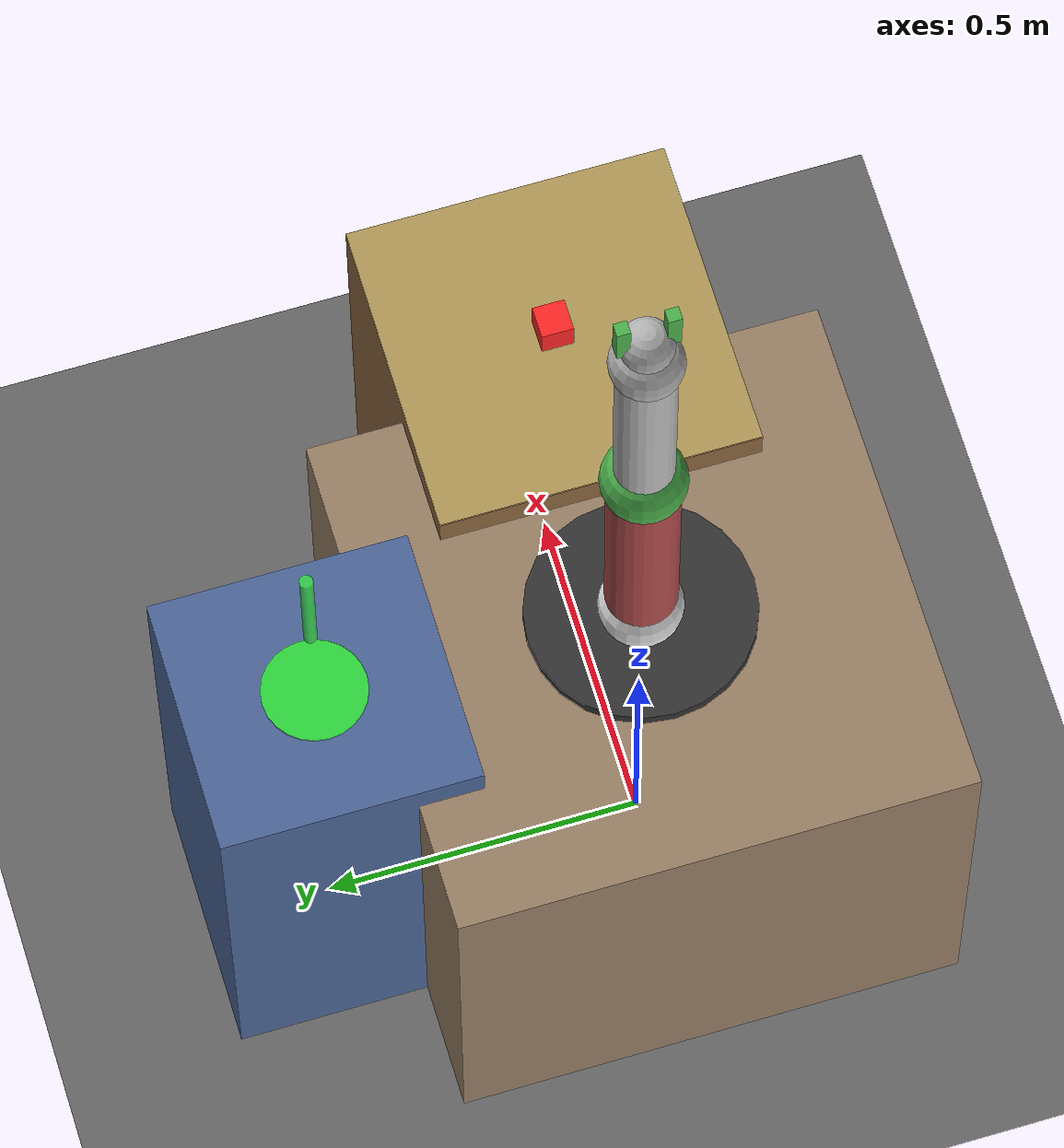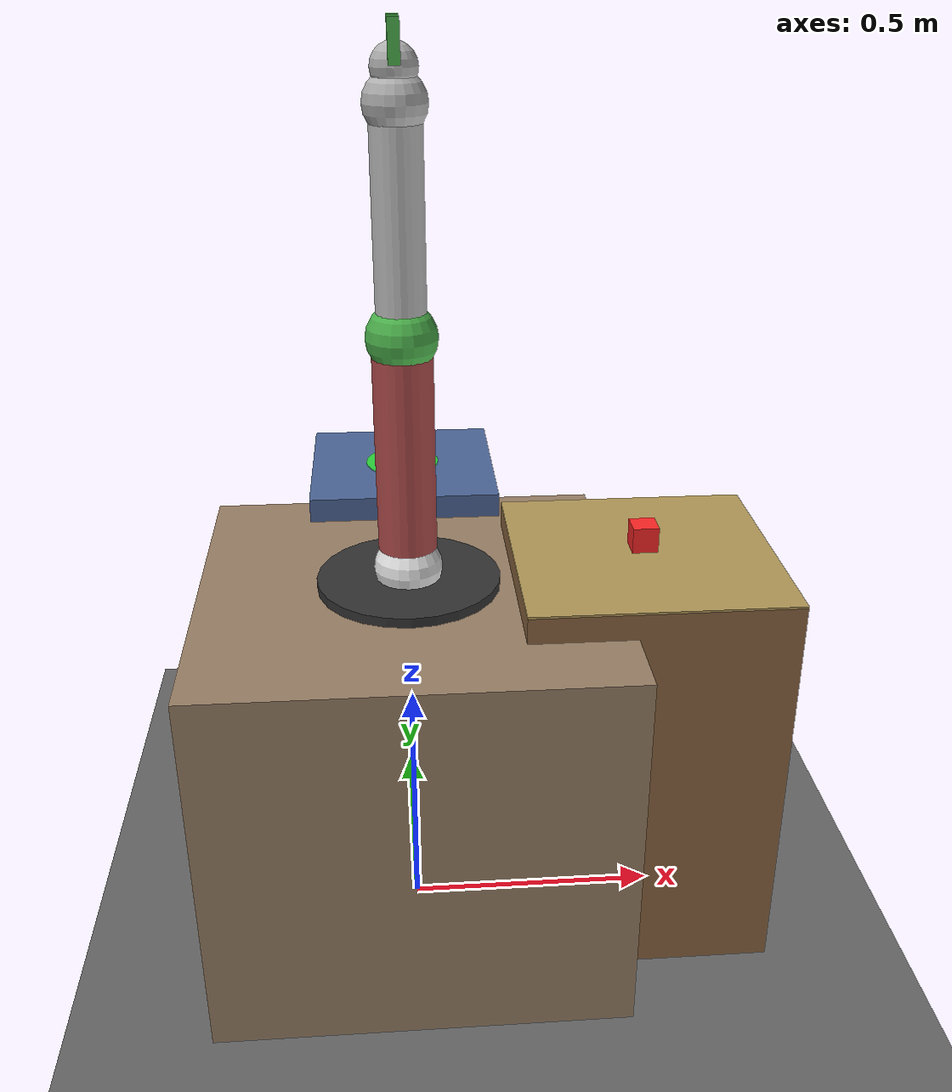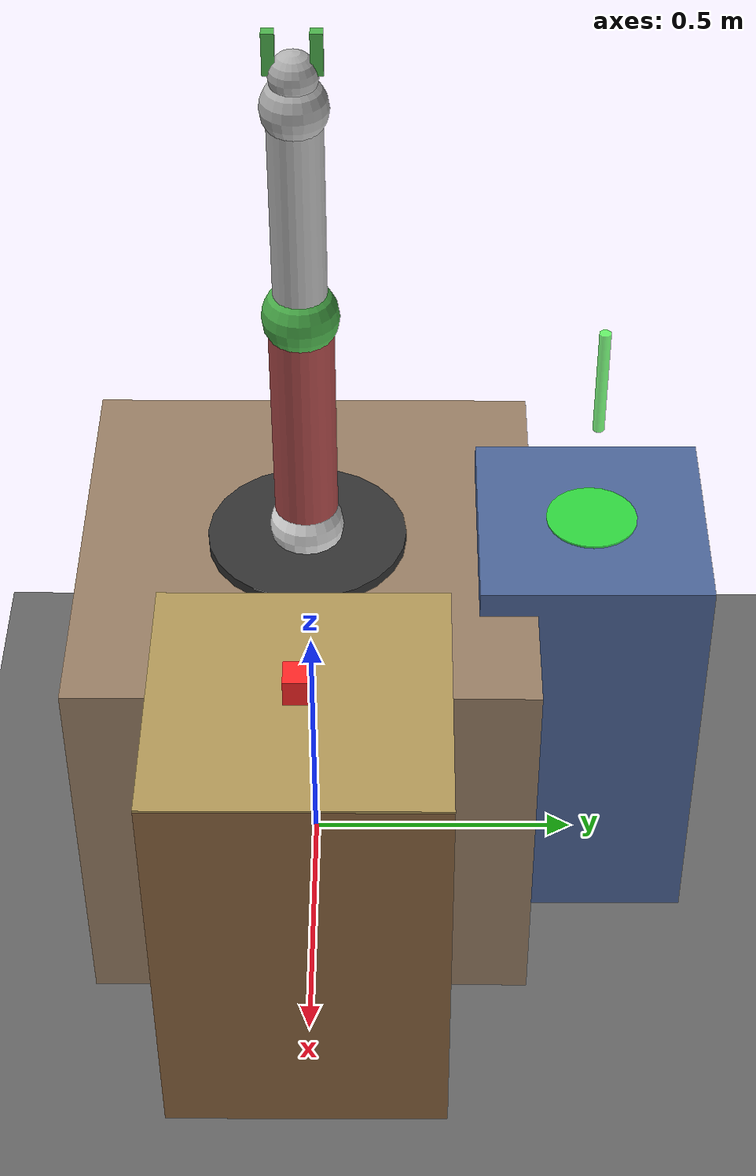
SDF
<?xml version="1.0"?>
<sdf version="1.8">
  <world name="pick_place_world">

    <!-- ============================================================
         PHYSICS
    ============================================================ -->
    <physics name="1ms" type="ode">
      <max_step_size>0.001</max_step_size>
      <real_time_factor>1.0</real_time_factor>
      <real_time_update_rate>1000</real_time_update_rate>
    </physics>

    <!-- ============================================================
         PLUGINS
    ============================================================ -->
    <plugin filename="gz-sim-physics-system"
            name="gz::sim::systems::Physics"/>
    <plugin filename="gz-sim-user-commands-system"
            name="gz::sim::systems::UserCommands"/>
    <plugin filename="gz-sim-scene-broadcaster-system"
            name="gz::sim::systems::SceneBroadcaster"/>
    <plugin filename="gz-sim-sensors-system"
            name="gz::sim::systems::Sensors">
      <render_engine>ogre2</render_engine>
    </plugin>
    <plugin filename="gz-sim-contact-system"
            name="gz::sim::systems::Contact"/>

    <!-- ============================================================
         LIGHTING
    ============================================================ -->
    <light type="directional" name="sun">
      <cast_shadows>true</cast_shadows>
      <pose>0 0 10 0 0 0</pose>
      <diffuse>0.8 0.8 0.8 1</diffuse>
      <specular>0.2 0.2 0.2 1</specular>
      <direction>-0.5 0.1 -0.9</direction>
    </light>

    <!-- ============================================================
         GROUND PLANE
    ============================================================ -->
    <model name="ground_plane">
      <static>true</static>
      <link name="link">
        <collision name="collision">
          <geometry><plane><normal>0 0 1</normal><size>100 100</size></plane></geometry>
        </collision>
        <visual name="visual">
          <geometry><plane><normal>0 0 1</normal><size>10 10</size></plane></geometry>
          <material>
            <ambient>0.3 0.3 0.3 1</ambient>
            <diffuse>0.4 0.4 0.4 1</diffuse>
          </material>
        </visual>
      </link>
    </model>

    <!-- ============================================================
         WORKTABLE (robot base platform)
    ============================================================ -->
    <model name="robot_table">
      <static>true</static>
      <pose>0 0 0 0 0 0</pose>
      <link name="table_link">
        <visual name="table_visual">
          <pose>0 0 0.375 0 0 0</pose>
          <geometry><box><size>0.8 0.8 0.75</size></box></geometry>
          <material>
            <ambient>0.5 0.4 0.3 1</ambient>
            <diffuse>0.6 0.5 0.4 1</diffuse>
          </material>
        </visual>
        <collision name="table_collision">
          <pose>0 0 0.375 0 0 0</pose>
          <geometry><box><size>0.8 0.8 0.75</size></box></geometry>
        </collision>
      </link>
    </model>

    <!-- ============================================================
         PICK TABLE (where the object sits)
    ============================================================ -->
    <model name="pick_table">
      <static>true</static>
      <pose>0.45 0 0 0 0 0</pose>
      <link name="table_link">
        <visual name="table_visual">
          <pose>0 0 0.4 0 0 0</pose>
          <geometry><box><size>0.5 0.5 0.8</size></box></geometry>
          <material>
            <ambient>0.4 0.3 0.2 1</ambient>
            <diffuse>0.55 0.4 0.25 1</diffuse>
          </material>
        </visual>
        <collision name="table_collision">
          <pose>0 0 0.4 0 0 0</pose>
          <geometry><box><size>0.5 0.5 0.8</size></box></geometry>
        </collision>
        <!-- Table top surface marker -->
        <visual name="tabletop_visual">
          <pose>0 0 0.802 0 0 0</pose>
          <geometry><box><size>0.5 0.5 0.004</size></box></geometry>
          <material>
            <ambient>0.6 0.5 0.3 1</ambient>
            <diffuse>0.7 0.6 0.35 1</diffuse>
          </material>
        </visual>
      </link>
    </model>

    <!-- ============================================================
         PLACE ZONE TABLE
    ============================================================ -->
    <model name="place_table">
      <static>true</static>
      <pose>0 0.5 0 0 0 0</pose>
      <link name="table_link">
        <visual name="table_visual">
          <pose>0 0 0.4 0 0 0</pose>
          <geometry><box><size>0.4 0.4 0.8</size></box></geometry>
          <material>
            <ambient>0.2 0.3 0.5 1</ambient>
            <diffuse>0.3 0.4 0.6 1</diffuse>
          </material>
        </visual>
        <collision name="table_collision">
          <pose>0 0 0.4 0 0 0</pose>
          <geometry><box><size>0.4 0.4 0.8</size></box></geometry>
        </collision>
        <!-- Place zone marker (green circle indicator) -->
        <visual name="place_marker_visual">
          <pose>0 0 0.802 0 0 0</pose>
          <geometry><cylinder><radius>0.08</radius><length>0.004</length></cylinder></geometry>
          <material>
            <ambient>0.1 0.8 0.1 0.8</ambient>
            <diffuse>0.2 1.0 0.2 0.8</diffuse>
          </material>
        </visual>
      </link>
    </model>

    <!-- ============================================================
         PLACE ZONE VISUAL INDICATOR (floating arrow)
    ============================================================ -->
    <model name="place_indicator">
      <static>true</static>
      <pose>0 0.5 1.1 0 0 0</pose>
      <link name="link">
        <visual name="arrow_visual">
          <geometry><cylinder><radius>0.01</radius><length>0.2</length></cylinder></geometry>
          <material>
            <ambient>0.1 0.9 0.1 0.7</ambient>
            <diffuse>0.2 1.0 0.2 0.7</diffuse>
          </material>
        </visual>
      </link>
    </model>

    <!-- ============================================================
         UR5 ROBOT
    ============================================================ -->
    <include>
      <uri>model://ur5_robot</uri>
      <pose>0 0 0.75 0 0 0</pose>
    </include>

    <!-- ============================================================
         PICK OBJECT (Red box)
    ============================================================ -->
    <model name="pick_object">
      <pose>0.45 0.0 0.835 0 0 0</pose>
      <link name="box_link">
        <inertial>
          <mass>0.15</mass>
          <inertia><ixx>0.0001</ixx><ixy>0</ixy><ixz>0</ixz>
                   <iyy>0.0001</iyy><iyz>0</iyz><izz>0.0001</izz></inertia>
        </inertial>
        <visual name="box_visual">
          <geometry><box><size>0.05 0.05 0.05</size></box></geometry>
          <material>
            <ambient>0.9 0.1 0.1 1</ambient>
            <diffuse>1.0 0.15 0.15 1</diffuse>
            <specular>0.5 0.1 0.1 1</specular>
            <emissive>0.05 0.0 0.0 1</emissive>
          </material>
        </visual>
        <collision name="box_collision">
          <geometry><box><size>0.05 0.05 0.05</size></box></geometry>
          <surface>
            <friction>
              <ode><mu>1.0</mu><mu2>1.0</mu2></ode>
            </friction>
            <contact>
              <ode>
                <kp>1e6</kp>
                <kd>1</kd>
              </ode>
            </contact>
          </surface>
        </collision>
      </link>
    </model>

  </world>
</sdf>

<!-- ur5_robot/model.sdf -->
<sdf version="1.8">
  <model name="ur5_robot">
    <static>false</static>
    <joint name="world_fixed_joint" type="fixed">
      <parent>world</parent>
      <child>base_link</child>
    </joint>
    <!-- ============================================================
         BASE LINK (fixed to world via joint below)
    ============================================================ -->
    <link name="base_link">
      <pose>0 0 0 0 0 0</pose>
      <inertial>
        <mass>100</mass>
        <inertia><ixx>0.0061</ixx><ixy>0</ixy><ixz>0</ixz>
                 <iyy>0.0061</iyy><iyz>0</iyz><izz>0.01164</izz></inertia>
      </inertial>
      <visual name="base_visual">
        <geometry><cylinder><radius>0.175</radius><length>0.038</length></cylinder></geometry>
        <material><ambient>0.1 0.1 0.1 1</ambient><diffuse>0.2 0.2 0.2 1</diffuse></material>
      </visual>
      <collision name="base_collision">
        <geometry><cylinder><radius>0.075</radius><length>0.038</length></cylinder></geometry>
      </collision>
    </link>

    <!-- ============================================================
         SHOULDER LINK
    ============================================================ -->
    <link name="shoulder_link">
      <pose>0 0 0.038 0 0 0</pose>
      <inertial>
        <mass>3.7</mass>
        <inertia><ixx>0.01</ixx><ixy>0</ixy><ixz>0</ixz>
                 <iyy>0.01</iyy><iyz>0</iyz><izz>0.01</izz></inertia>
      </inertial>
      <visual name="shoulder_visual">
        <geometry><sphere><radius>0.065</radius></sphere></geometry>
        <material><ambient>0.8 0.8 0.8 1</ambient><diffuse>0.9 0.9 0.9 1</diffuse></material>
      </visual>
      <collision name="shoulder_collision">
        <geometry><sphere><radius>0.065</radius></sphere></geometry>
      </collision>
    </link>

    <joint name="shoulder_pan_joint" type="revolute">
      <parent>base_link</parent>
      <child>shoulder_link</child>
      <pose>0 0 0 0 0 0</pose>
      <axis>
        <xyz>0 0 1</xyz>
        <limit><lower>-3.1415</lower><upper>3.1415</upper>
               <effort>150</effort><velocity>3.15</velocity></limit>
        <dynamics><damping>1.0</damping></dynamics>
      </axis>
    </joint>

    <!-- ============================================================
         UPPER ARM LINK
    ============================================================ -->
    <link name="upper_arm_link">
      <pose>0 0 0.08 0 0 0</pose>
      <inertial>
        <mass>8.393</mass>
        <inertia><ixx>0.226</ixx><ixy>0</ixy><ixz>0</ixz>
                 <iyy>0.226</iyy><iyz>0</iyz><izz>0.0151</izz></inertia>
      </inertial>
      <visual name="upper_arm_visual">
        <pose>0 0 0.2125 0 0 0</pose>
        <geometry><cylinder><radius>0.055</radius><length>0.425</length></cylinder></geometry>
        <material><ambient>0.5 0.2 0.2 1</ambient><diffuse>0.7 0.3 0.3 1</diffuse></material>
      </visual>
      <collision name="upper_arm_collision">
        <pose>0 0 0.2125 0 0 0</pose>
        <geometry><cylinder><radius>0.055</radius><length>0.425</length></cylinder></geometry>
      </collision>
    </link>

    <joint name="shoulder_lift_joint" type="revolute">
      <parent>shoulder_link</parent>
      <child>upper_arm_link</child>
      <pose>0 0 0 0 0 0</pose>
      <axis>
        <xyz>0 1 0</xyz>
        <limit><lower>-3.1415</lower><upper>3.1415</upper>
               <effort>150</effort><velocity>2.3</velocity></limit>
        <dynamics><damping>1.0</damping></dynamics>
      </axis>
    </joint>

    <!-- ============================================================
         elbow LINK
    ============================================================ -->
    <link name="elbow_link">
      <pose>0 0 0.483 0 0 0</pose>
      <inertial>
        <mass>3.7</mass>
        <inertia><ixx>0.01</ixx><ixy>0</ixy><ixz>0</ixz>
                 <iyy>0.01</iyy><iyz>0</iyz><izz>0.01</izz></inertia>
      </inertial>
      <visual name="elbow_visual">
        <geometry><sphere><radius>0.065</radius></sphere></geometry>
        <material><ambient>0.2 0.5 0.2 1</ambient><diffuse>0.3 0.7 0.3 1</diffuse></material>
      </visual>
      <collision name="elbow_collision">
        <geometry><sphere><radius>0.065</radius></sphere></geometry>
      </collision>
    </link>

    <joint name="elbow_pan_joint" type="fixed">
      <parent>upper_arm_link</parent>
      <child>elbow_link</child>
    </joint>

    <!-- ============================================================
         FOREARM LINK
    ============================================================ -->
    <link name="forearm_link">
      <pose>0 0 0.481 0 0 0</pose>
      <inertial>
        <mass>2.275</mass>
        <inertia><ixx>0.049</ixx><ixy>0</ixy><ixz>0</ixz>
                 <iyy>0.049</iyy><iyz>0</iyz><izz>0.004</izz></inertia>
      </inertial>
      <visual name="forearm_visual">
        <pose>0 0 0.196 0 0 0</pose>
        <geometry><cylinder><radius>0.045</radius><length>0.392</length></cylinder></geometry>
        <material><ambient>0.7 0.7 0.7 1</ambient><diffuse>0.75 0.75 0.75 1</diffuse></material>
      </visual>
      <collision name="forearm_collision">
        <pose>0 0 0.196 0 0 0</pose>
        <geometry><cylinder><radius>0.045</radius><length>0.392</length></cylinder></geometry>
      </collision>
    </link>

    <joint name="elbow_lift_joint" type="revolute">
      <parent>elbow_link</parent>
      <child>forearm_link</child>
      <pose>0 0 0 0 0 0</pose>
      <axis>
        <xyz>0 1 0</xyz>
        <limit><lower>-3.1415</lower><upper>3.1415</upper>
               <effort>150</effort><velocity>3.15</velocity></limit>
        <dynamics><damping>1.0</damping></dynamics>
      </axis>
    </joint>

    <!-- ============================================================
         WRIST 1 LINK
    ============================================================ -->
    <link name="wrist_1_link">
      <pose>0 0 0.871 0 0 0</pose>
      <inertial>
        <mass>1.219</mass>
        <inertia><ixx>0.002</ixx><ixy>0</ixy><ixz>0</ixz>
                 <iyy>0.002</iyy><iyz>0</iyz><izz>0.002</izz></inertia>
      </inertial>
      <visual name="wrist_1_visual">
        <geometry><sphere><radius>0.055</radius></sphere></geometry>
        <material><ambient>0.6 0.6 0.6 1</ambient><diffuse>0.7 0.7 0.7 1</diffuse></material>
      </visual>
      <collision name="wrist_1_collision">
        <geometry><sphere><radius>0.055</radius></sphere></geometry>
      </collision>
    </link>

    <joint name="wrist_1_joint" type="revolute">
      <parent>forearm_link</parent>
      <child>wrist_1_link</child>
      <pose>0 0 0 0 0 0</pose>
      <axis>
        <xyz>0 1 0</xyz>
        <limit><lower>-3.1415</lower><upper>3.1415</upper>
               <effort>28</effort><velocity>3.2</velocity></limit>
        <dynamics><damping>0.5</damping></dynamics>
      </axis>
    </joint>

    <!-- ============================================================
         WRIST 2 LINK
    ============================================================ -->
    <link name="wrist_2_link">
      <pose>0 0 0.926 0 0 0</pose>
      <inertial>
        <mass>1.219</mass>
        <inertia><ixx>0.002</ixx><ixy>0</ixy><ixz>0</ixz>
                 <iyy>0.002</iyy><iyz>0</iyz><izz>0.002</izz></inertia>
      </inertial>
      <visual name="wrist_2_visual">
        <geometry><sphere><radius>0.04</radius></sphere></geometry>
        <material><ambient>0.6 0.6 0.6 1</ambient><diffuse>0.7 0.7 0.7 1</diffuse></material>
      </visual>
      <collision name="wrist_2_collision">
        <geometry><sphere><radius>0.02</radius></sphere></geometry>
      </collision>
    </link>

    <joint name="wrist_2_joint" type="fixed">
      <parent>wrist_1_link</parent>
      <child>wrist_2_link</child>
    </joint>

    <!-- ============================================================
         EE (END EFFECTOR) LINK  – tool center point
    ============================================================ -->
    <link name="ee_link">
      <pose>0 0 0.966 0 0 0</pose>
      <inertial>
        <mass>0.01</mass>
        <inertia><ixx>0.00001</ixx><ixy>0</ixy><ixz>0</ixz>
                 <iyy>0.00001</iyy><iyz>0</iyz><izz>0.00001</izz></inertia>
      </inertial>
    </link>

    <joint name="ee_fixed_joint" type="fixed">
      <parent>wrist_2_link</parent>
      <child>ee_link</child>
      <pose>0 0 0 0 0 0</pose>
    </joint>

    <!-- ============================================================
         GRIPPER FINGER LEFT
    ============================================================ -->
    <link name="left_finger">
      <pose>0 -0.0367 0.966 0 0 0</pose>
      <inertial>
        <mass>0.05</mass>
        <inertia><ixx>0.0001</ixx><ixy>0</ixy><ixz>0</ixz>
                 <iyy>0.0001</iyy><iyz>0</iyz><izz>0.0001</izz></inertia>
      </inertial>
      <visual name="left_finger_visual">
        <geometry><box><size>0.02 0.02 0.07</size></box></geometry>
        <material><ambient>0.2 0.5 0.2 1</ambient><diffuse>0.3 0.7 0.3 1</diffuse></material>
      </visual>
      <collision name="left_finger_collision">
        <geometry><box><size>0.02 0.02 0.07</size></box></geometry>
        <surface>
          <friction>
            <ode>
              <mu>10000.0</mu>     <!-- 靜摩擦係數，直接給它很大 -->
              <mu2>10000.0</mu2>    <!-- 動摩擦係數 -->
              <fdir1>0 0 0</fdir1>
            </ode>
          </friction>
          <contact>
            <ode>
              <kp>1e7</kp>         <!-- 接觸硬度 (Stiffness) -->
              <kd>1.0</kd>         <!-- 接觸阻尼 (Damping) -->
              <min_depth>0.001</min_depth> <!-- 允許微小嵌入以增加抓力 -->
              <max_vel>0.1</max_vel>
            </ode>
          </contact>
        </surface>
      </collision>
    </link>

    <joint name="left_finger_joint" type="prismatic">
      <parent>ee_link</parent>
      <child>left_finger</child>
      <pose>0 0 0 0 0 0</pose>
      <axis>
        <xyz>0 -1 0</xyz>
        <limit><lower>-0.04</lower><upper>0.04</upper>
               <effort>20</effort><velocity>0.2</velocity></limit>
        <dynamics><damping>0.7</damping></dynamics>
      </axis>
    </joint>

    <!-- ============================================================
         GRIPPER FINGER RIGHT
    ============================================================ -->
    <link name="right_finger">
      <pose>0 0.0367 0.966 0 0 0</pose>
      <inertial>
        <mass>0.05</mass>
        <inertia><ixx>0.0001</ixx><ixy>0</ixy><ixz>0</ixz>
                 <iyy>0.0001</iyy><iyz>0</iyz><izz>0.0001</izz></inertia>
      </inertial>
      <visual name="right_finger_visual">
        <geometry><box><size>0.02 0.02 0.07</size></box></geometry>
        <material><ambient>0.2 0.5 0.2 1</ambient><diffuse>0.3 0.7 0.3 1</diffuse></material>
      </visual>
      <collision name="right_finger_collision">
        <geometry><box><size>0.02 0.02 0.07</size></box></geometry>
        <surface>
          <friction>
            <ode>
              <mu>1000.0</mu>     <!-- 靜摩擦係數，直接給它很大 -->
              <mu2>1000.0</mu2>    <!-- 動摩擦係數 -->
              <fdir1>0 0 0</fdir1>
            </ode>
          </friction>
          <contact>
            <ode>
              <kp>1e7</kp>         <!-- 接觸硬度 (Stiffness) -->
              <kd>1.0</kd>         <!-- 接觸阻尼 (Damping) -->
              <min_depth>0.001</min_depth> <!-- 允許微小嵌入以增加抓力 -->
              <max_vel>0.1</max_vel>
            </ode>
          </contact>
        </surface>
      </collision>
    </link>

    <joint name="right_finger_joint" type="prismatic">
      <parent>ee_link</parent>
      <child>right_finger</child>
      <pose>0 0 0 0 0 0</pose>
      <axis>
        <xyz>0 1 0</xyz>
        <limit><lower>-0.04</lower><upper>0.04</upper>
               <effort>20</effort><velocity>0.2</velocity></limit>
        <dynamics><damping>1.0</damping></dynamics>
      </axis>
    </joint>

    <!-- ============================================================
         PLUGINS: Joint Position Controller for all joints
    ============================================================ -->
    <plugin filename="gz-sim-joint-position-controller-system"
            name="gz::sim::systems::JointPositionController">
      <joint_name>shoulder_pan_joint</joint_name>
      <p_gain>10000</p_gain>
      <!-- 2. 加入 I 值：這是對抗重力的關鍵，它會累積力量直到抵銷重力為止 -->
      <i_gain>100</i_gain>
      <d_gain>50</d_gain>
      <i_max>50</i_max>
      <i_min>-50</i_min>
      <!-- 3. 檢查出力上限：確保數值足以舉起手臂 (150 可能不夠) -->
      <cmd_max>500</cmd_max>
      <cmd_min>-1000</cmd_min>
      <topic>/model/ur5_robot/joint/shoulder_pan_joint/cmd_pos</topic>
    </plugin>

    <plugin filename="gz-sim-joint-position-controller-system"
            name="gz::sim::systems::JointPositionController">
      <joint_name>shoulder_lift_joint</joint_name>
      <p_gain>10000</p_gain>
      <i_gain>100</i_gain>
      <d_gain>50</d_gain>
      <i_max>50</i_max>
      <i_min>-50</i_min>
      <cmd_max>900</cmd_max>
      <cmd_min>-1000</cmd_min>
      <topic>/model/ur5_robot/joint/shoulder_lift_joint/cmd_pos</topic>
    </plugin>

    <plugin filename="gz-sim-joint-position-controller-system"
            name="gz::sim::systems::JointPositionController">
      <joint_name>elbow_pan_joint</joint_name>
      <p_gain>10000</p_gain>
      <i_gain>100</i_gain>
      <d_gain>50</d_gain>
      <i_max>50</i_max>
      <i_min>-50</i_min>
      <cmd_max>500</cmd_max>
      <cmd_min>-1000</cmd_min>
      <topic>/model/ur5_robot/joint/elbow_pan_joint/cmd_pos</topic>
    </plugin>

    <plugin filename="gz-sim-joint-position-controller-system"
            name="gz::sim::systems::JointPositionController">
      <joint_name>elbow_lift_joint</joint_name>
      <p_gain>10000</p_gain>
      <i_gain>100</i_gain>
      <d_gain>50</d_gain>
      <i_max>50</i_max>
      <i_min>-50</i_min>
      <cmd_max>500</cmd_max>
      <cmd_min>-1000</cmd_min>
      <topic>/model/ur5_robot/joint/elbow_lift_joint/cmd_pos</topic>
    </plugin>

    <plugin filename="gz-sim-joint-position-controller-system"
            name="gz::sim::systems::JointPositionController">
      <joint_name>wrist_1_joint</joint_name>
      <p_gain>10000</p_gain>
      <i_gain>100</i_gain>
      <d_gain>50</d_gain>
      <i_max>50</i_max>
      <i_min>-50</i_min>
      <cmd_max>500</cmd_max>
      <cmd_min>-1000</cmd_min>
      <topic>/model/ur5_robot/joint/wrist_1_joint/cmd_pos</topic>
    </plugin>

    <plugin filename="gz-sim-joint-position-controller-system"
            name="gz::sim::systems::JointPositionController">
      <joint_name>wrist_2_joint</joint_name>
      <p_gain>10000</p_gain>
      <i_gain>100</i_gain>
      <d_gain>50</d_gain>
      <i_max>50</i_max>
      <i_min>-50</i_min>
      <cmd_max>200</cmd_max>
      <cmd_min>-1000</cmd_min>
      <topic>/model/ur5_robot/joint/wrist_2_joint/cmd_pos</topic>
    </plugin>

    <!-- Gripper fingers -->
    <plugin filename="gz-sim-joint-position-controller-system"
            name="gz::sim::systems::JointPositionController">
      <joint_name>left_finger_joint</joint_name>
      <p_gain>200</p_gain>
      <i_gain>0.1</i_gain>
      <d_gain>5</d_gain>
      <i_max>1</i_max>
      <i_min>-1</i_min>
      <cmd_max>50</cmd_max>
      <cmd_min>-20</cmd_min>
      <topic>/model/ur5_robot/joint/left_finger_joint/cmd_pos</topic>
    </plugin>

    <plugin filename="gz-sim-joint-position-controller-system"
            name="gz::sim::systems::JointPositionController">
      <joint_name>right_finger_joint</joint_name>
      <p_gain>200</p_gain>
      <i_gain>0.1</i_gain>
      <d_gain>5</d_gain>
      <i_max>1</i_max>
      <i_min>-1</i_min>
      <cmd_max>50</cmd_max>
      <cmd_min>-20</cmd_min>
      <topic>/model/ur5_robot/joint/right_finger_joint/cmd_pos</topic>
    </plugin>

    <plugin filename="gz-sim-detachable-joint-system"
        name="gz::sim::systems::DetachableJoint">
      <parent_link>left_finger</parent_link>
      <child_model>pick_object</child_model>
      <child_link>box_link</child_link>
      <attach_topic>/model/ur5_robot/detachable_joint/attach</attach_topic>
      <detach_topic>/model/ur5_robot/detachable_joint/detach</detach_topic>
      <detach_on_load>true</detach_on_load>   <!-- ← 關鍵：載入時不自動黏 -->
      <suppress_child_warning>true</suppress_child_warning>
    </plugin>

    <!-- Joint State Publisher -->
    <plugin filename="gz-sim-joint-state-publisher-system"
            name="gz::sim::systems::JointStatePublisher">
      <topic>/model/ur5_robot/joint_states</topic>
    </plugin>

  </model>
</sdf>
